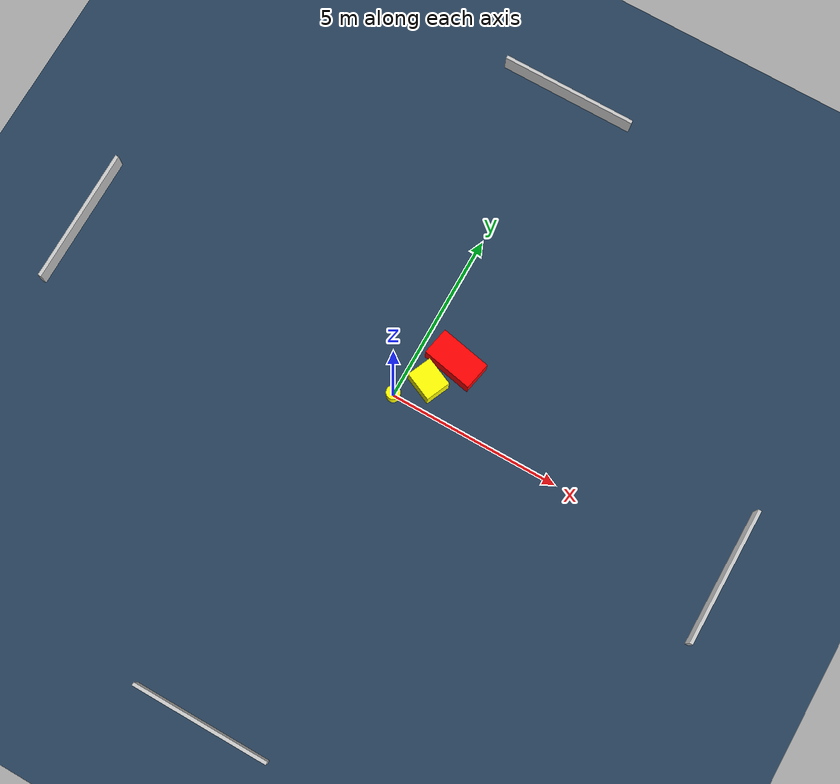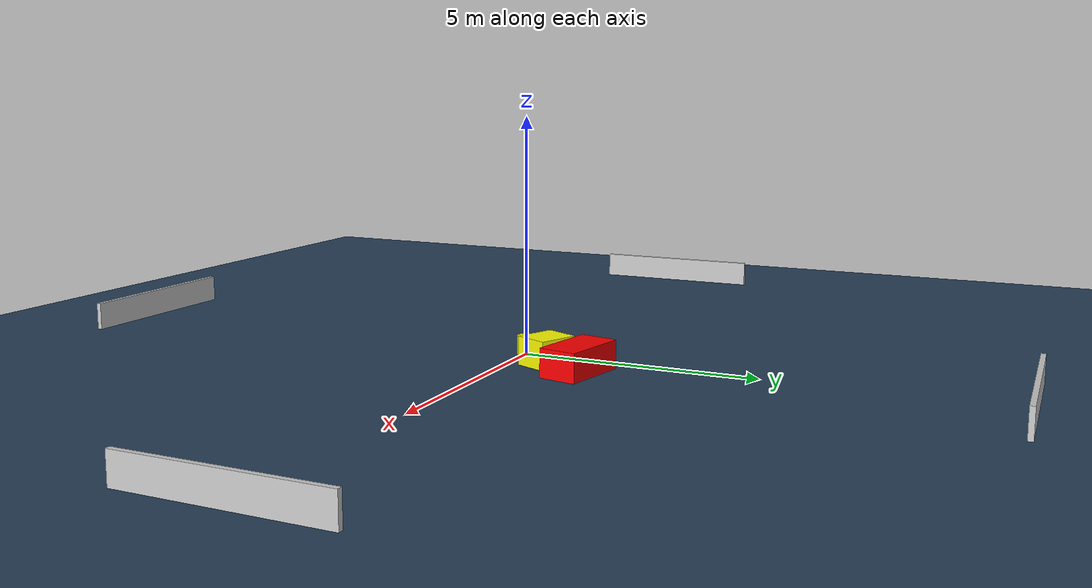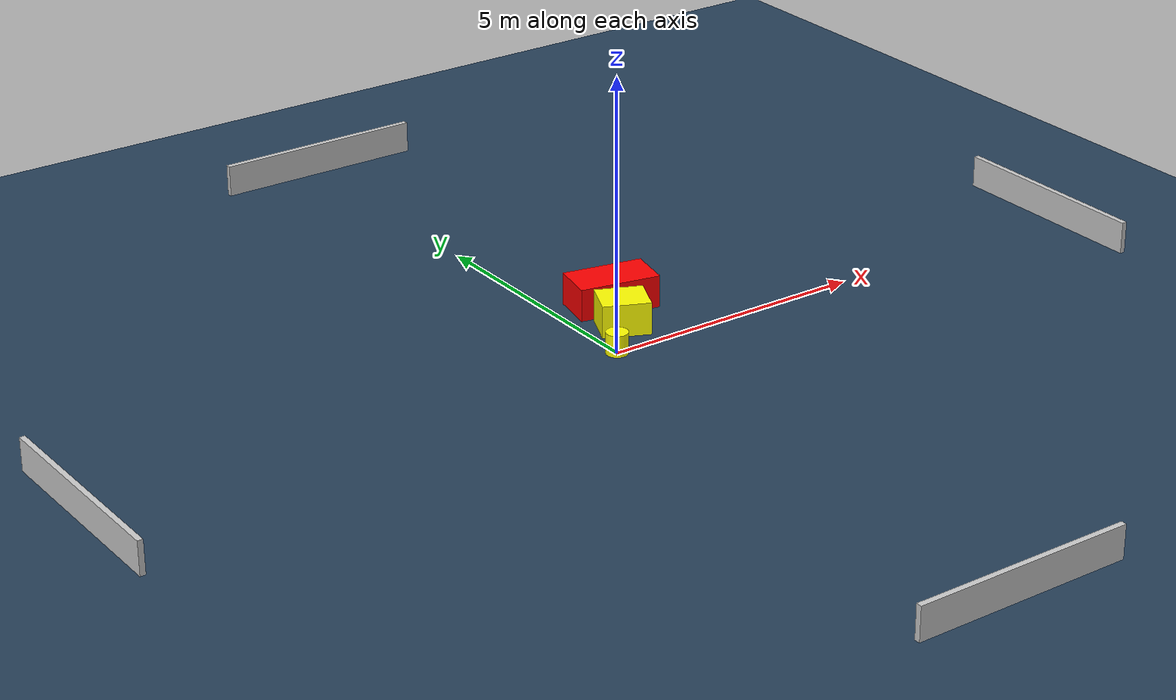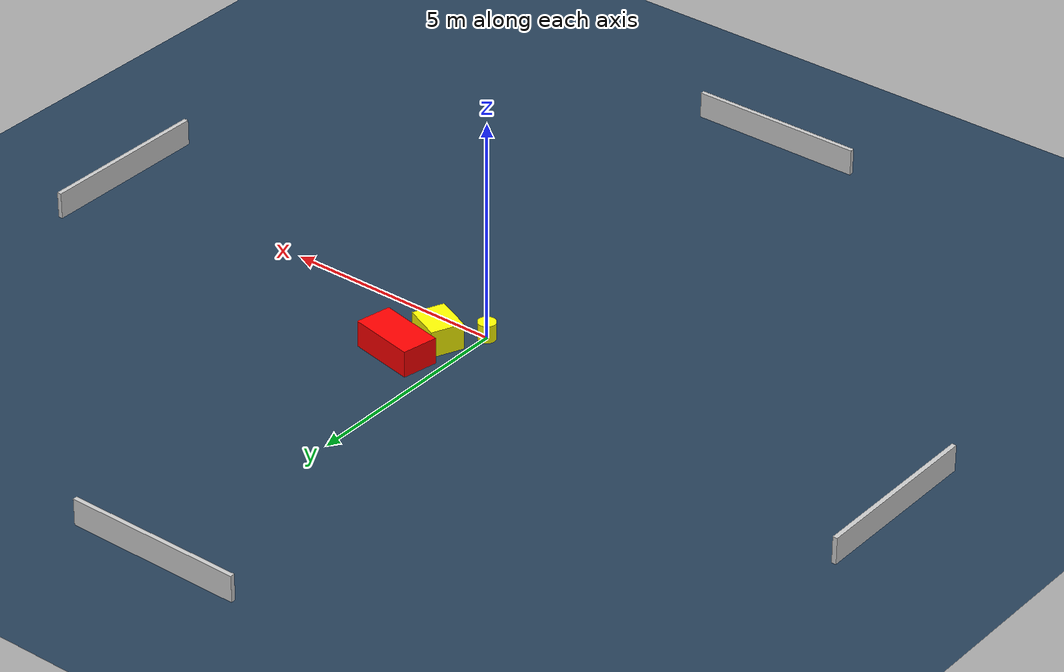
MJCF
<?xml version="1.0" ?>
<mujoco model="generated_environment">
  <option timestep="0.01" integrator="RK4" cone="elliptic"/>
  <default>
    <geom density="1"/>
  </default>
  <asset>
    <texture builtin="gradient" height="3072" name="skybox" rgb1="0.3 0.5 0.7" rgb2="0 0 0" type="skybox" width="512"/>
    <texture builtin="checker" height="300" name="groundplane" rgb1="0.2 0.3 0.4" rgb2="0.1 0.2 0.3" type="2d" width="300"/>
    <material name="groundplane" reflectance="0.2" texrepeat="5 5" texture="groundplane"/>
  </asset>
  <worldbody>
    <light dir="0 0 -1" directional="true" pos="0 0 1.5"/>
    <geom condim="3" friction="0.5 0.005 0.001" material="groundplane" name="floor" pos="0 0 0" size="0 0 0.05" type="plane"/>
    <body name="walls">
      <geom name="wall_1" condim="4" pos="-10.0 0.0 0.3" rgba="0.800000011920929 0.800000011920929 0.800000011920929 1.0" size="0.05 2.0 0.3" type="box"/>
      <geom name="wall_2" condim="4" pos="10.0 0.0 0.3" rgba="0.800000011920929 0.800000011920929 0.800000011920929 1.0" size="0.05 2.0 0.3" type="box"/>
      <geom name="wall_3" condim="4" pos="0.0 -10.0 0.3" rgba="0.800000011920929 0.800000011920929 0.800000011920929 1.0" size="2.0 0.05 0.3" type="box"/>
      <geom name="wall_4" condim="4" pos="0.0 10.0 0.3" rgba="0.800000011920929 0.800000011920929 0.800000011920929 1.0" size="2.0 0.05 0.3" type="box"/>
    </body>
    <body name="robot">
      <joint name="joint_x" type="slide" pos="0 0 0" axis="1 0 0"/>
      <joint name="joint_y" type="slide" pos="0 0 0" axis="0 1 0"/>
      <geom name="robot" type="cylinder" pos="0.0 0.0 0.2" size="0.2 0.2 0.0" mass="5.0" friction="1.0 0.005 0.0001" condim="4" rgba="1.0 1.0 0.0 1.0"/>
    </body>
    <body name="obstacle_1_movable">
      <geom name="obstacle_1_movable" condim="4" pos="0.6646259640539012 0.7602349335384585 0.3" euler="0 0 66.25404269827031" friction="0.0 0.005 0.001" rgba="1.0 1.0 0.0 1.0" size="0.3671765551979195 0.43503565841283015 0.3" type="box" mass="0.1"/>
      <joint type="free"/>
    </body>
    <body name="obstacle_2_static">
      <geom name="obstacle_2_static" condim="4" pos="1.0374973895961852 1.6196851622812805 0.3" euler="0 0 168.70568580412015" friction="0.0 0.005 0.001" rgba="1.0 0.0 0.0 1.0" size="0.7519735169596089 0.4068291071466149 0.3" type="box"/>
    </body>
  </worldbody>
  <actuator>
    <motor name="actuator_x" joint="joint_x" gear="1" ctrlrange="-1 1"/>
    <motor name="actuator_y" joint="joint_y" gear="1" ctrlrange="-1 1"/>
  </actuator>
</mujoco>
